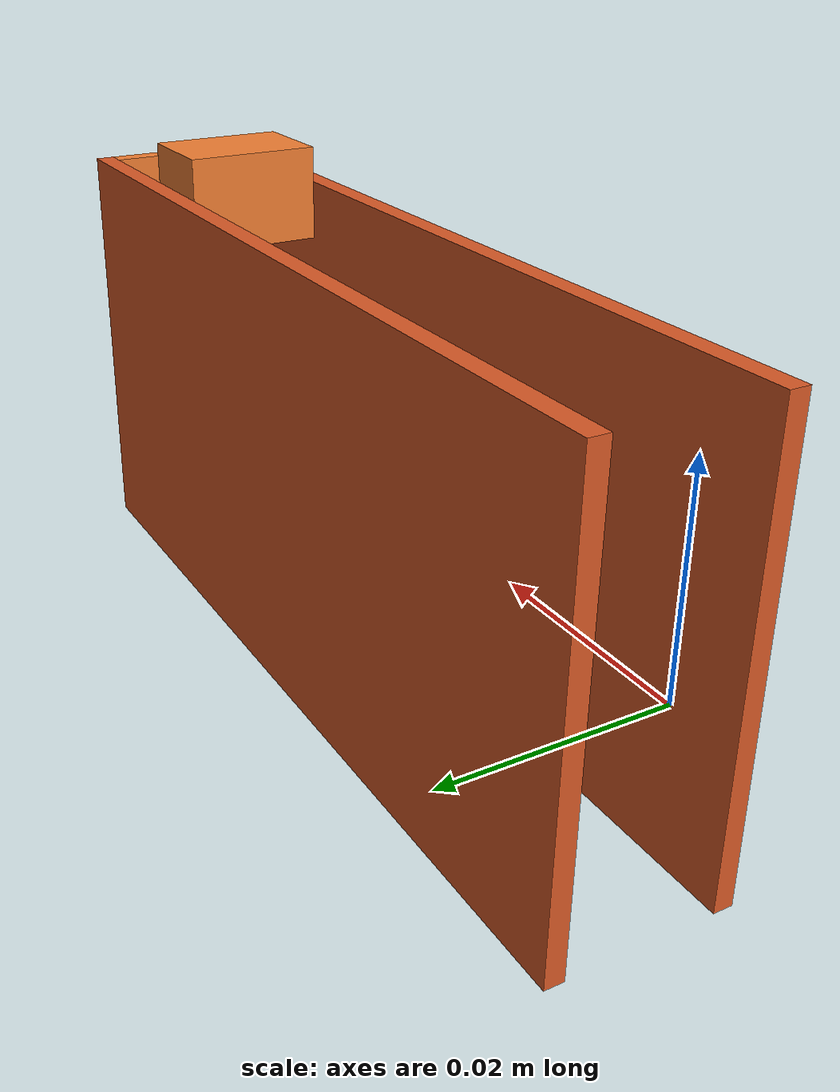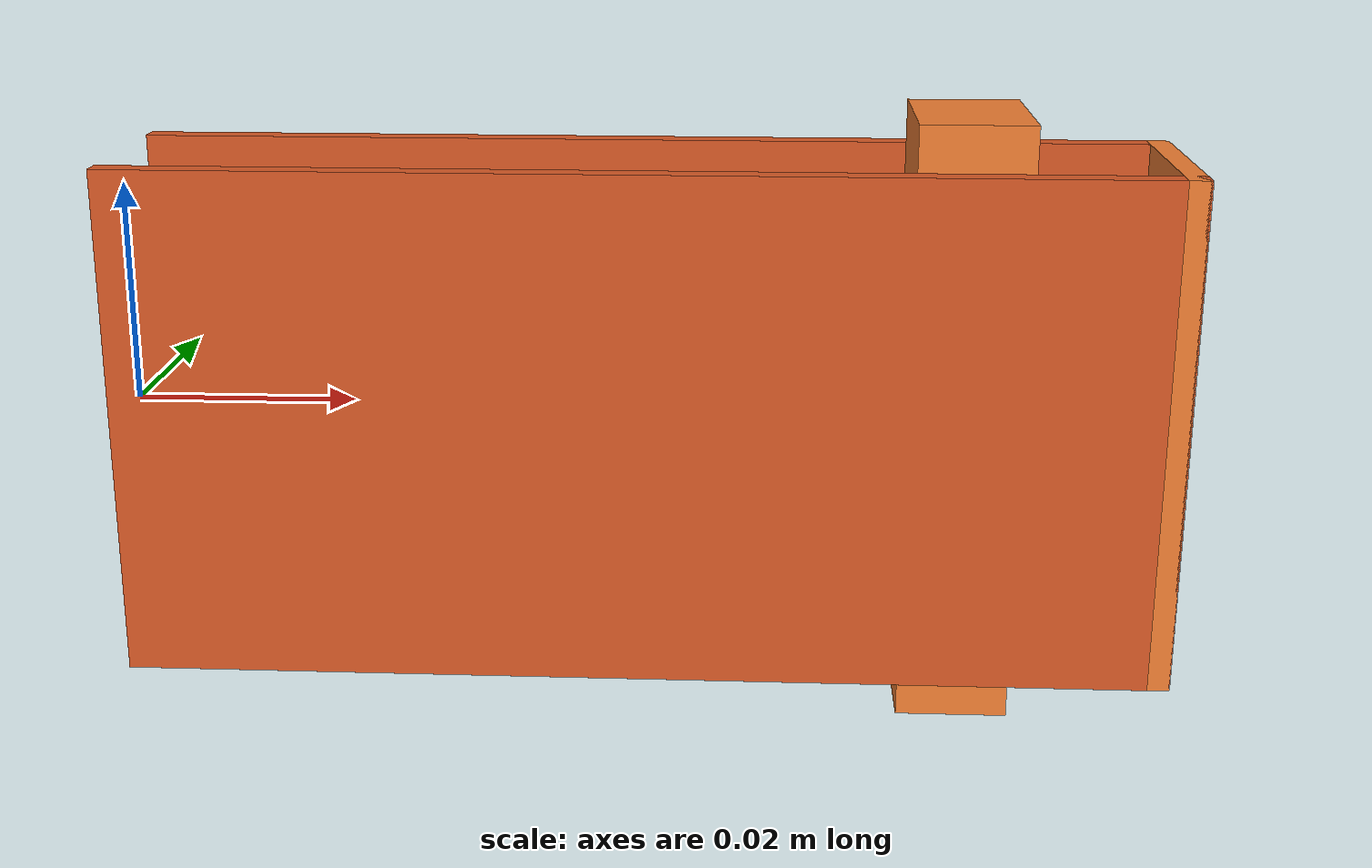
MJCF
<?xml version="1.0"?>
<mujoco model="snap_socket">
  <worldbody>
    <body name="snap_socket" mocap="true">

      <!-- ===== Top flap =====
           size: 40 (X half) × 9.5 (Y half) × 1 (Z half) → 80 × 19 × 2 mm
           pos:  x=+0.040 (centers x∈[0, 0.080]),  z=+0.023 -->
      <!-- group="3" → hide from viser by default so the prong/blocker is visible.
           Toggle "Geom group 3" in the viser Scene panel to show again. -->
      <geom type="box" name="socket_top_flap" group="3"
            size="0.040 0.0095 0.001"
            pos="0.040 0 0.023"
            rgba="0.85 0.35 0.15 1.0"
            condim="4" friction="1.0 0.05 0.005"
            contype="1" conaffinity="1"
            solref="0.01 1" solimp="0.95 0.99 0.001 0.5 2"/>

      <!-- ===== Bottom flap ===== -->
      <geom type="box" name="socket_bot_flap" group="3"
            size="0.040 0.0095 0.001"
            pos="0.040 0 -0.023"
            rgba="0.85 0.35 0.15 1.0"
            condim="4" friction="1.0 0.05 0.005"
            contype="1" conaffinity="1"
            solref="0.01 1" solimp="0.95 0.99 0.001 0.5 2"/>

      <!-- ===== Side walls (±Y) =====
           Span x=[0, 0.094]. Inner face y=±0.0075, outer y=±0.0095.
           size: 0.047 (X half) × 0.001 (Y half) × 0.023 (Z half) -->
      <geom type="box" name="socket_side_pos_y"
            size="0.047 0.001 0.023"
            pos="0.047 0.0085 0"
            rgba="0.85 0.35 0.15 1.0"
            condim="4" friction="1.0 0.05 0.005"
            contype="1" conaffinity="1"
            solref="0.01 1" solimp="0.95 0.99 0.001 0.5 2"/>
      <geom type="box" name="socket_side_neg_y"
            size="0.047 0.001 0.023"
            pos="0.047 -0.0085 0"
            rgba="0.85 0.35 0.15 1.0"
            condim="4" friction="1.0 0.05 0.005"
            contype="1" conaffinity="1"
            solref="0.01 1" solimp="0.95 0.99 0.001 0.5 2"/>

      <!-- ===== Entry-blocker boxes at flap back (x=+0.075) ===== -->
      <geom type="box" name="socket_entry_blocker_top"
            size="0.005 0.007 0.005"
            pos="0.075 0 0.022"
            rgba="0.95 0.50 0.20 1.0"
            condim="4" friction="1.0 0.05 0.005"
            contype="1" conaffinity="1"
            solref="0.005 1" solimp="0.99 0.999 0.001 0.5 2"/>
      <geom type="box" name="socket_entry_blocker_bot"
            size="0.005 0.007 0.005"
            pos="0.075 0 -0.022"
            rgba="0.95 0.50 0.20 1.0"
            condim="4" friction="1.0 0.05 0.005"
            contype="1" conaffinity="1"
            solref="0.005 1" solimp="0.99 0.999 0.001 0.5 2"/>

      <!-- ===== Back wall (YZ plane, +X end) =====
           pos x=+0.093 → -X face at x=+0.092 -->
      <geom type="box" name="socket_back_wall"
            size="0.001 0.0095 0.023"
            pos="0.093 0 0"
            rgba="0.95 0.50 0.20 1.0"
            condim="4" friction="1.0 0.05 0.005"
            contype="1" conaffinity="1"
            solref="0.02 1" solimp="0.85 0.95 0.001 0.5 2"/>

      <!-- ===== Sites ===== -->
      <site name="flap_inner"    pos="0     0 0" size="0.0008" rgba="0 1 1 1" group="4"/>
      <site name="flap_outer"    pos="0.080 0 0" size="0.0008" rgba="0 1 1 1" group="4"/>
      <site name="back_wall"     pos="0.092 0 0" size="0.0008" rgba="0 1 1 1" group="4"/>
      <site name="seated_target" pos="0.080 0 0" size="0.0008" rgba="0 1 1 1" group="4"/>

    </body>
  </worldbody>
</mujoco>
